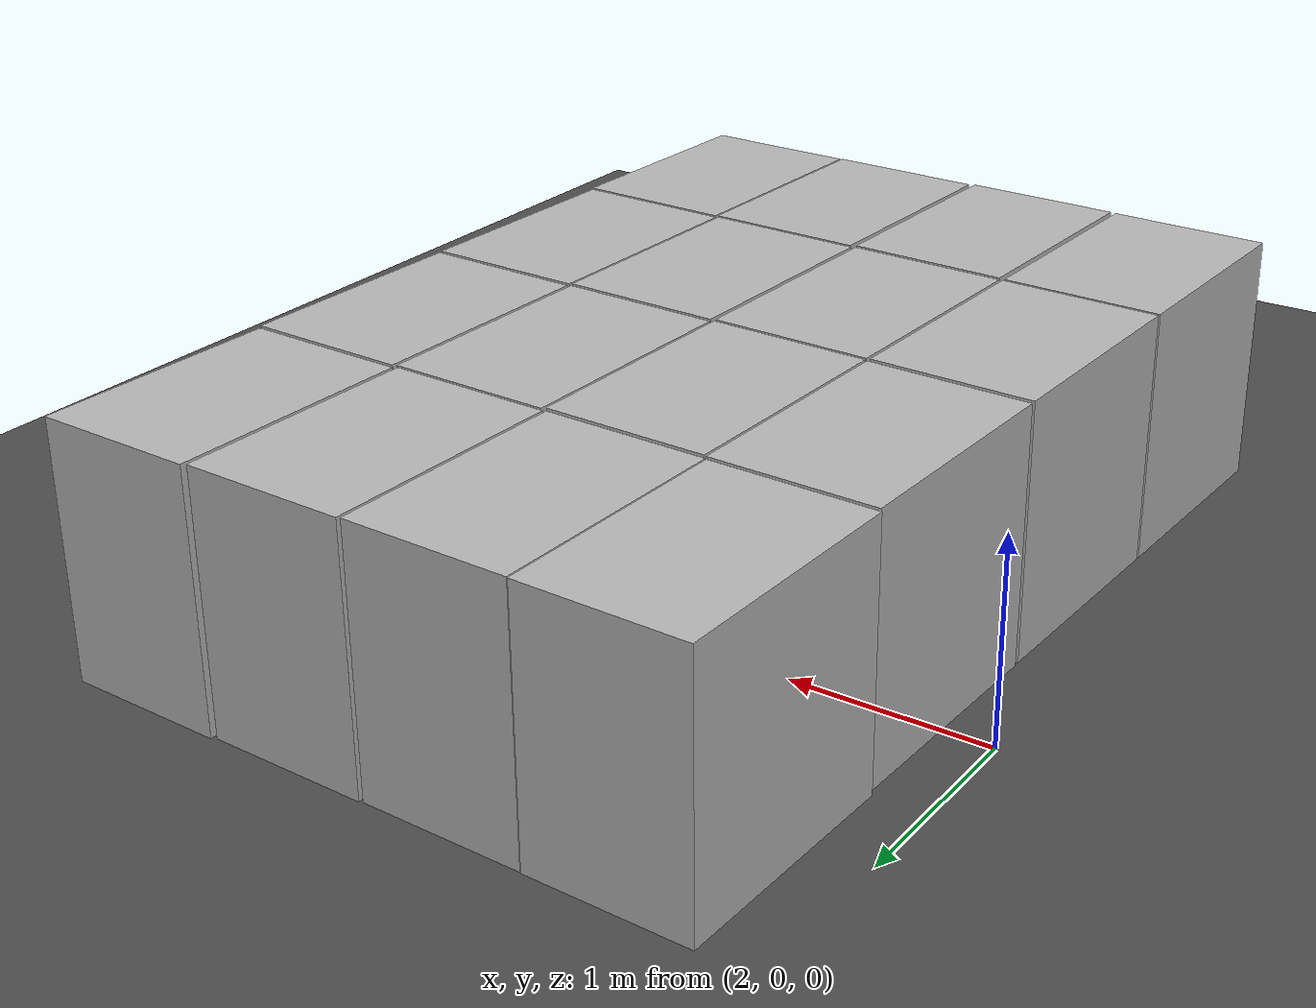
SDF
<sdf version="1.6">
 <world name="default">
  <light name="sun" type="directional">
   <pose>0 0 10 0 -0 0</pose>
   <diffuse>0.8 0.8 0.8 1</diffuse>
   <specular>0.1 0.1 0.1 1</specular>
   <attenuation>
    <range>1000</range>
    <constant>0.9</constant>
    <linear>0.01</linear>
    <quadratic>0.001</quadratic>
   </attenuation>
   <direction>-0.5 0.5 -1</direction>
  </light>
  <model name="ground_plane">
   <static>1</static>
   <link name="link">
    <collision name="collision">
     <geometry><plane><normal>0 0 1</normal><size>100 100</size></plane></geometry>
     <surface><friction><ode><mu>100</mu><mu2>50</mu2></ode></friction></surface>
    </collision>
    <visual name="visual">
     <cast_shadows>0</cast_shadows>
     <geometry><plane><normal>0 0 1</normal><size>100 100</size></plane></geometry>
     <material>
      <script><uri>file://media/materials/scripts/gazebo.material</uri><name>Gazebo/Grey</name></script>
     </material>
    </visual>
   </link>
  </model>
  <model name="asphalt 1">
   <static>1</static>
   <link name="link">
    <collision name="collision"><geometry><box><size>20 20 0.1</size></box></geometry></collision>
    <visual name="visual">
     <cast_shadows>0</cast_shadows>
     <geometry><box><size>20 20 0.1</size></box></geometry>
     <material>
      <script>
       <uri>model://asphalt_plane/materials/scripts</uri>
       <uri>model://asphalt_plane/materials/textures</uri>
       <name>vrc/asphalt</name>
      </script>
     </material>
    </visual>
   </link>
  </model>
  <physics name="default_physics" default="0" type="ode">
   <ode>
    <solver>
     <type>quick</type>
     <iters>10</iters>
     <sor>1.3</sor>
     <use_dynamic_moi_rescaling>0</use_dynamic_moi_rescaling>
    </solver>
    <constraints>
     <cfm>0</cfm>
     <erp>0.2</erp>
     <contact_max_correcting_vel>100</contact_max_correcting_vel>
     <contact_surface_layer>0.001</contact_surface_layer>
    </constraints>
   </ode>
   <max_step_size>0.004</max_step_size>
   <real_time_factor>1</real_time_factor>
   <real_time_update_rate>250</real_time_update_rate>
  </physics>
  <model name="pallet 01 box">
   <pose>2.61466 0.012491 0.674487 8.4e-05 -0.000839 -1.60258</pose>
   <static>0</static>
   <link name="link">
    <inertial>
     <mass>40</mass>
     <inertia><ixx>1</ixx><ixy>0</ixy><ixz>0</ixz><iyy>1</iyy><iyz>0</iyz><izz>1</izz></inertia>
    </inertial>
    <collision name="collision">
     <geometry><box><size>1.2 0.8 1.25</size></box></geometry>
     <surface><contact><ode><max_vel>0.1</max_vel><min_depth>0.001</min_depth></ode></contact></surface>
    </collision>
    <visual name="visual">
     <geometry><mesh><uri>model://big_box3/meshes/big_box.dae</uri><scale>1 1 1</scale></mesh></geometry>
    </visual>
   </link>
  </model>
  <gravity>0 0 -9.8066</gravity>
  <magnetic_field>6e-06 2.3e-05 -4.2e-05</magnetic_field>
  <atmosphere type="adiabatic"/>
  <scene><ambient>0.4 0.4 0.4 1</ambient><background>0.7 0.7 0.7 1</background><shadows>1</shadows></scene>
  <spherical_coordinates>
   <surface_model>EARTH_WGS84</surface_model>
   <latitude_deg>0</latitude_deg>
   <longitude_deg>0</longitude_deg>
   <elevation>0</elevation>
   <heading_deg>0</heading_deg>
  </spherical_coordinates>
  <model name="pallet 01 box_clone">
   <pose>2.63557 1.23616 0.674487 8.4e-05 -0.000839 -1.60245</pose>
   <static>0</static>
   <link name="link">
    <inertial>
     <mass>40</mass>
     <inertia><ixx>1</ixx><ixy>0</ixy><ixz>0</ixz><iyy>1</iyy><iyz>0</iyz><izz>1</izz></inertia>
    </inertial>
    <collision name="collision">
     <geometry><box><size>1.2 0.8 1.25</size></box></geometry>
     <surface><contact><ode><max_vel>0.1</max_vel><min_depth>0.001</min_depth></ode></contact></surface>
    </collision>
    <visual name="visual">
     <geometry><mesh><uri>model://big_box3/meshes/big_box.dae</uri><scale>1 1 1</scale></mesh></geometry>
    </visual>
   </link>
  </model>
  <model name="pallet 01 box_clone_0">
   <pose>2.57849 -1.21583 0.674492 4.4e-05 -0.000862 -1.60234</pose>
   <static>0</static>
   <link name="link">
    <inertial>
     <mass>40</mass>
     <inertia><ixx>1</ixx><ixy>0</ixy><ixz>0</ixz><iyy>1</iyy><iyz>0</iyz><izz>1</izz></inertia>
    </inertial>
    <collision name="collision">
     <geometry><box><size>1.2 0.8 1.25</size></box></geometry>
     <surface><contact><ode><max_vel>0.1</max_vel><min_depth>0.001</min_depth></ode></contact></surface>
    </collision>
    <visual name="visual">
     <geometry><mesh><uri>model://big_box3/meshes/big_box.dae</uri><scale>1 1 1</scale></mesh></geometry>
    </visual>
   </link>
  </model>
  <model name="pallet 01 box_clone_1">
   <pose>2.53985 -2.43457 0.674482 0 -0.000833 -1.60197</pose>
   <static>0</static>
   <link name="link">
    <inertial>
     <mass>40</mass>
     <inertia><ixx>1</ixx><ixy>0</ixy><ixz>0</ixz><iyy>1</iyy><iyz>0</iyz><izz>1</izz></inertia>
    </inertial>
    <collision name="collision">
     <geometry><box><size>1.2 0.8 1.25</size></box></geometry>
     <surface><contact><ode><max_vel>0.1</max_vel><min_depth>0.001</min_depth></ode></contact></surface>
    </collision>
    <visual name="visual">
     <geometry><mesh><uri>model://big_box3/meshes/big_box.dae</uri><scale>1 1 1</scale></mesh></geometry>
    </visual>
   </link>
  </model>
  <model name="pallet 01 box_clone_2">
   <pose>3.3691 -2.46487 0.674492 4.4e-05 -0.000862 -1.60205</pose>
   <static>0</static>
   <link name="link">
    <inertial>
     <mass>40</mass>
     <inertia><ixx>1</ixx><ixy>0</ixy><ixz>0</ixz><iyy>1</iyy><iyz>0</iyz><izz>1</izz></inertia>
    </inertial>
    <collision name="collision">
     <geometry><box><size>1.2 0.8 1.25</size></box></geometry>
     <surface><contact><ode><max_vel>0.1</max_vel><min_depth>0.001</min_depth></ode></contact></surface>
    </collision>
    <visual name="visual">
     <geometry><mesh><uri>model://big_box3/meshes/big_box.dae</uri><scale>1 1 1</scale></mesh></geometry>
    </visual>
   </link>
  </model>
  <model name="pallet 01 box_clone_3">
   <pose>3.39518 -1.23894 0.674481 0 -0.000832 -1.60226</pose>
   <static>0</static>
   <link name="link">
    <inertial>
     <mass>40</mass>
     <inertia><ixx>1</ixx><ixy>0</ixy><ixz>0</ixz><iyy>1</iyy><iyz>0</iyz><izz>1</izz></inertia>
    </inertial>
    <collision name="collision">
     <geometry><box><size>1.2 0.8 1.25</size></box></geometry>
     <surface><contact><ode><max_vel>0.1</max_vel><min_depth>0.001</min_depth></ode></contact></surface>
    </collision>
    <visual name="visual">
     <geometry><mesh><uri>model://big_box3/meshes/big_box.dae</uri><scale>1 1 1</scale></mesh></geometry>
    </visual>
   </link>
  </model>
  <model name="pallet 01 box_clone_4">
   <pose>3.42787 -0.019253 0.674486 6.5e-05 -0.000842 -1.60212</pose>
   <static>0</static>
   <link name="link">
    <inertial>
     <mass>40</mass>
     <inertia><ixx>1</ixx><ixy>0</ixy><ixz>0</ixz><iyy>1</iyy><iyz>0</iyz><izz>1</izz></inertia>
    </inertial>
    <collision name="collision">
     <geometry><box><size>1.2 0.8 1.25</size></box></geometry>
     <surface><contact><ode><max_vel>0.1</max_vel><min_depth>0.001</min_depth></ode></contact></surface>
    </collision>
    <visual name="visual">
     <geometry><mesh><uri>model://big_box3/meshes/big_box.dae</uri><scale>1 1 1</scale></mesh></geometry>
    </visual>
   </link>
  </model>
  <model name="pallet 01 box_clone_5">
   <pose>3.4432 1.20699 0.674448 1.3e-05 -0.000815 -1.60214</pose>
   <static>0</static>
   <link name="link">
    <inertial>
     <mass>40</mass>
     <inertia><ixx>1</ixx><ixy>0</ixy><ixz>0</ixz><iyy>1</iyy><iyz>0</iyz><izz>1</izz></inertia>
    </inertial>
    <collision name="collision">
     <geometry><box><size>1.2 0.8 1.25</size></box></geometry>
     <surface><contact><ode><max_vel>0.1</max_vel><min_depth>0.001</min_depth></ode></contact></surface>
    </collision>
    <visual name="visual">
     <geometry><mesh><uri>model://big_box3/meshes/big_box.dae</uri><scale>1 1 1</scale></mesh></geometry>
    </visual>
   </link>
  </model>
  <model name="pallet 01 box_clone_6">
   <pose>4.21708 -1.25401 0.674451 4e-06 -0.000822 -1.6026</pose>
   <static>0</static>
   <link name="link">
    <inertial>
     <mass>40</mass>
     <inertia><ixx>1</ixx><ixy>0</ixy><ixz>0</ixz><iyy>1</iyy><iyz>0</iyz><izz>1</izz></inertia>
    </inertial>
    <collision name="collision">
     <geometry><box><size>1.2 0.8 1.25</size></box></geometry>
     <surface><contact><ode><max_vel>0.1</max_vel><min_depth>0.001</min_depth></ode></contact></surface>
    </collision>
    <visual name="visual">
     <geometry><mesh><uri>model://big_box3/meshes/big_box.dae</uri><scale>1 1 1</scale></mesh></geometry>
    </visual>
   </link>
  </model>
  <model name="pallet 01 box_clone_7">
   <pose>4.2423 -0.030072 0.674399 -2.5e-05 -0.000824 -1.60181</pose>
   <static>0</static>
   <link name="link">
    <inertial>
     <mass>40</mass>
     <inertia><ixx>1</ixx><ixy>0</ixy><ixz>0</ixz><iyy>1</iyy><iyz>0</iyz><izz>1</izz></inertia>
    </inertial>
    <collision name="collision">
     <geometry><box><size>1.2 0.8 1.25</size></box></geometry>
     <surface><contact><ode><max_vel>0.1</max_vel><min_depth>0.001</min_depth></ode></contact></surface>
    </collision>
    <visual name="visual">
     <geometry><mesh><uri>model://big_box3/meshes/big_box.dae</uri><scale>1 1 1</scale></mesh></geometry>
    </visual>
   </link>
  </model>
  <model name="pallet 01 box_clone_8">
   <pose>4.25845 1.18847 0.674494 -3.3e-05 -0.000871 -1.60199</pose>
   <static>0</static>
   <link name="link">
    <inertial>
     <mass>40</mass>
     <inertia><ixx>1</ixx><ixy>0</ixy><ixz>0</ixz><iyy>1</iyy><iyz>0</iyz><izz>1</izz></inertia>
    </inertial>
    <collision name="collision">
     <geometry><box><size>1.2 0.8 1.25</size></box></geometry>
     <surface><contact><ode><max_vel>0.1</max_vel><min_depth>0.001</min_depth></ode></contact></surface>
    </collision>
    <visual name="visual">
     <geometry><mesh><uri>model://big_box3/meshes/big_box.dae</uri><scale>1 1 1</scale></mesh></geometry>
    </visual>
   </link>
  </model>
  <model name="pallet 01 box_clone_9">
   <pose>4.19589 -2.47533 0.674482 0 -0.000833 -1.60207</pose>
   <static>0</static>
   <link name="link">
    <inertial>
     <mass>40</mass>
     <inertia><ixx>1</ixx><ixy>0</ixy><ixz>0</ixz><iyy>1</iyy><iyz>0</iyz><izz>1</izz></inertia>
    </inertial>
    <collision name="collision">
     <geometry><box><size>1.2 0.8 1.25</size></box></geometry>
     <surface><contact><ode><max_vel>0.1</max_vel><min_depth>0.001</min_depth></ode></contact></surface>
    </collision>
    <visual name="visual">
     <geometry><mesh><uri>model://big_box3/meshes/big_box.dae</uri><scale>1 1 1</scale></mesh></geometry>
    </visual>
   </link>
  </model>
  <model name="pallet 01 box_clone_10">
   <pose>5.00746 -2.49275 0.674485 6.5e-05 -0.00084 -1.60224</pose>
   <static>0</static>
   <link name="link">
    <inertial>
     <mass>40</mass>
     <inertia><ixx>1</ixx><ixy>0</ixy><ixz>0</ixz><iyy>1</iyy><iyz>0</iyz><izz>1</izz></inertia>
    </inertial>
    <collision name="collision">
     <geometry><box><size>1.2 0.8 1.25</size></box></geometry>
     <surface><contact><ode><max_vel>0.1</max_vel><min_depth>0.001</min_depth></ode></contact></surface>
    </collision>
    <visual name="visual">
     <geometry><mesh><uri>model://big_box3/meshes/big_box.dae</uri><scale>1 1 1</scale></mesh></geometry>
    </visual>
   </link>
  </model>
  <model name="pallet 01 box_clone_11">
   <pose>5.02974 -1.27023 0.67445 4e-06 -0.000821 -1.60223</pose>
   <static>0</static>
   <link name="link">
    <inertial>
     <mass>40</mass>
     <inertia><ixx>1</ixx><ixy>0</ixy><ixz>0</ixz><iyy>1</iyy><iyz>0</iyz><izz>1</izz></inertia>
    </inertial>
    <collision name="collision">
     <geometry><box><size>1.2 0.8 1.25</size></box></geometry>
     <surface><contact><ode><max_vel>0.1</max_vel><min_depth>0.001</min_depth></ode></contact></surface>
    </collision>
    <visual name="visual">
     <geometry><mesh><uri>model://big_box3/meshes/big_box.dae</uri><scale>1 1 1</scale></mesh></geometry>
    </visual>
   </link>
  </model>
  <model name="pallet 01 box_clone_12">
   <pose>5.0609 -0.045865 0.674467 4.8e-05 -0.000821 -1.60234</pose>
   <static>0</static>
   <link name="link">
    <inertial>
     <mass>40</mass>
     <inertia><ixx>1</ixx><ixy>0</ixy><ixz>0</ixz><iyy>1</iyy><iyz>0</iyz><izz>1</izz></inertia>
    </inertial>
    <collision name="collision">
     <geometry><box><size>1.2 0.8 1.25</size></box></geometry>
     <surface><contact><ode><max_vel>0.1</max_vel><min_depth>0.001</min_depth></ode></contact></surface>
    </collision>
    <visual name="visual">
     <geometry><mesh><uri>model://big_box3/meshes/big_box.dae</uri><scale>1 1 1</scale></mesh></geometry>
    </visual>
   </link>
  </model>
  <model name="pallet 01 box_clone_13">
   <pose>5.07884 1.1772 0.674451 4e-06 -0.000822 -1.60213</pose>
   <static>0</static>
   <link name="link">
    <inertial>
     <mass>40</mass>
     <inertia><ixx>1</ixx><ixy>0</ixy><ixz>0</ixz><iyy>1</iyy><iyz>0</iyz><izz>1</izz></inertia>
    </inertial>
    <collision name="collision">
     <geometry><box><size>1.2 0.8 1.25</size></box></geometry>
     <surface><contact><ode><max_vel>0.1</max_vel><min_depth>0.001</min_depth></ode></contact></surface>
    </collision>
    <visual name="visual">
     <geometry><mesh><uri>model://big_box3/meshes/big_box.dae</uri><scale>1 1 1</scale></mesh></geometry>
    </visual>
   </link>
  </model>
 </world>
</sdf>
